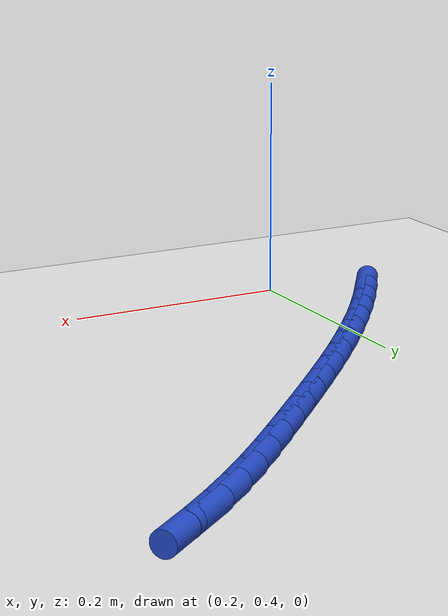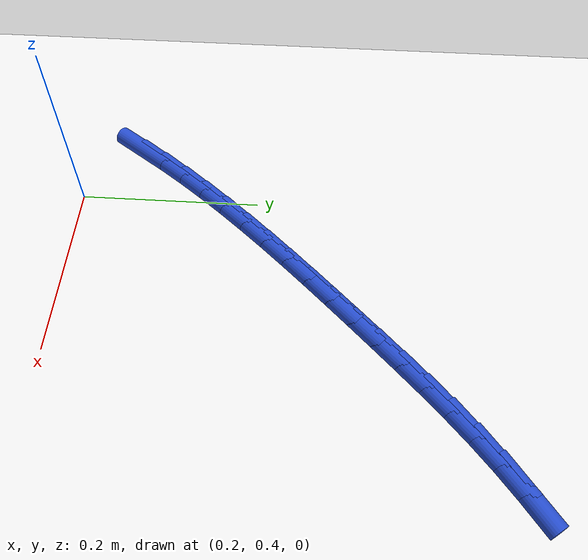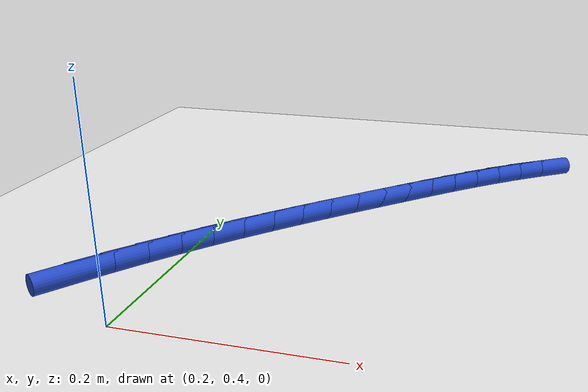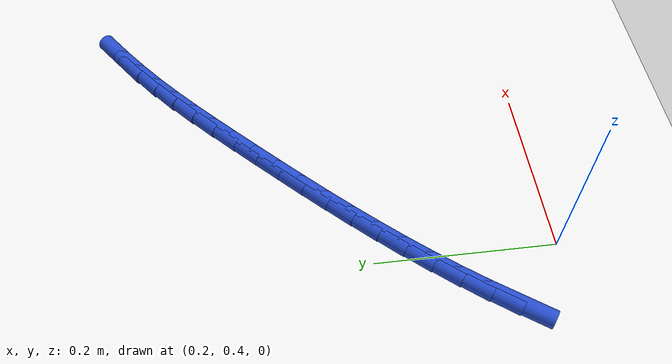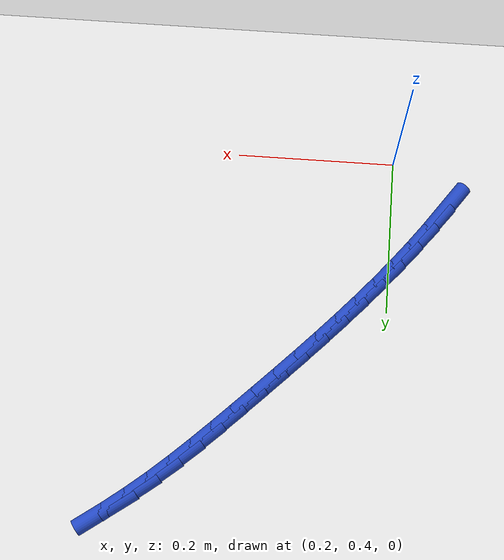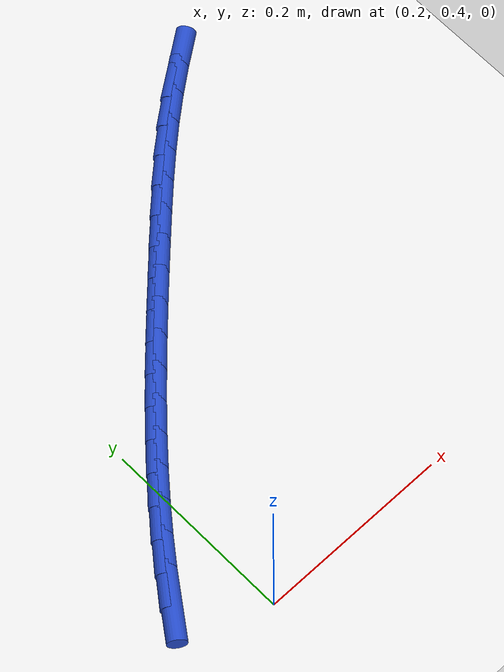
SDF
<sdf version="1.6">
 <world name="default">
  <model name="ground_plane">
   <static>1</static>
   <link name="link">
    <collision name="collision">
     <geometry><plane><normal>0 0 1</normal><size>100 100</size></plane></geometry>
     <surface><friction><ode><mu>100</mu><mu2>50</mu2></ode></friction></surface>
    </collision>
    <visual name="visual">
     <cast_shadows>0</cast_shadows>
     <geometry><plane><normal>0 0 1</normal><size>100 100</size></plane></geometry>
     <material>
      <script><uri>file://media/materials/scripts/gazebo.material</uri><name>Gazebo/WhiteGlow</name></script>
     </material>
    </visual>
   </link>
  </model>
  <model name="line">
   <link name="link_15">
    <pose>0.1322830042431913 0.46207215570587157 0.01 0 1.57 0.9538682935010617</pose>
    <collision name="collision">
     <geometry><cylinder><radius>0.01</radius><length>0.08</length></cylinder></geometry>
    </collision>
    <visual name="visual">
     <material>
      <script><name>Gazebo/Blue</name><uri>file://media/materials/scripts/gazebo.material</uri></script>
     </material>
     <geometry><cylinder><radius>0.01</radius><length>0.08</length></cylinder></geometry>
    </visual>
   </link>
   <link name="link_16">
    <pose>0.15122352893425275 0.48877597467786177 0.01 0 1.57 0.9235308130817051</pose>
    <collision name="collision">
     <geometry><cylinder><radius>0.01</radius><length>0.08</length></cylinder></geometry>
    </collision>
    <visual name="visual">
     <material>
      <script><name>Gazebo/Blue</name><uri>file://media/materials/scripts/gazebo.material</uri></script>
     </material>
     <geometry><cylinder><radius>0.01</radius><length>0.08</length></cylinder></geometry>
    </visual>
   </link>
   <link name="link_17">
    <pose>0.17106117995493442 0.5150197750576937 0.01 0 1.57 0.8963553222531527</pose>
    <collision name="collision">
     <geometry><cylinder><radius>0.01</radius><length>0.08</length></cylinder></geometry>
    </collision>
    <visual name="visual">
     <material>
      <script><name>Gazebo/Blue</name><uri>file://media/materials/scripts/gazebo.material</uri></script>
     </material>
     <geometry><cylinder><radius>0.01</radius><length>0.08</length></cylinder></geometry>
    </visual>
   </link>
   <link name="link_18">
    <pose>0.19169857719446703 0.5408323892602536 0.01 0 1.57 0.872248544255945</pose>
    <collision name="collision">
     <geometry><cylinder><radius>0.01</radius><length>0.08</length></cylinder></geometry>
    </collision>
    <visual name="visual">
     <material>
      <script><name>Gazebo/Blue</name><uri>file://media/materials/scripts/gazebo.material</uri></script>
     </material>
     <geometry><cylinder><radius>0.01</radius><length>0.08</length></cylinder></geometry>
    </visual>
   </link>
   <link name="link_19">
    <pose>0.21303834054208118 0.566242649700428 0.01 0 1.57 0.8511163273038134</pose>
    <collision name="collision">
     <geometry><cylinder><radius>0.01</radius><length>0.08</length></cylinder></geometry>
    </collision>
    <visual name="visual">
     <material>
      <script><name>Gazebo/Blue</name><uri>file://media/materials/scripts/gazebo.material</uri></script>
     </material>
     <geometry><cylinder><radius>0.01</radius><length>0.08</length></cylinder></geometry>
    </visual>
   </link>
   <link name="link_20">
    <pose>0.2349830898870074 0.5912793887931036 0.01 0 1.57 0.8328695917835235</pose>
    <collision name="collision">
     <geometry><cylinder><radius>0.01</radius><length>0.08</length></cylinder></geometry>
    </collision>
    <visual name="visual">
     <material>
      <script><name>Gazebo/Blue</name><uri>file://media/materials/scripts/gazebo.material</uri></script>
     </material>
     <geometry><cylinder><radius>0.01</radius><length>0.08</length></cylinder></geometry>
    </visual>
   </link>
   <link name="link_21">
    <pose>0.2574354451184765 0.6159714389531667 0.01 0 1.57 0.8174289467947158</pose>
    <collision name="collision">
     <geometry><cylinder><radius>0.01</radius><length>0.08</length></cylinder></geometry>
    </collision>
    <visual name="visual">
     <material>
      <script><name>Gazebo/Blue</name><uri>file://media/materials/scripts/gazebo.material</uri></script>
     </material>
     <geometry><cylinder><radius>0.01</radius><length>0.08</length></cylinder></geometry>
    </visual>
   </link>
   <link name="link_22">
    <pose>0.2802980261257191 0.640347632595504 0.01 0 1.57 0.8047282567486036</pose>
    <collision name="collision">
     <geometry><cylinder><radius>0.01</radius><length>0.08</length></cylinder></geometry>
    </collision>
    <visual name="visual">
     <material>
      <script><name>Gazebo/Blue</name><uri>file://media/materials/scripts/gazebo.material</uri></script>
     </material>
     <geometry><cylinder><radius>0.01</radius><length>0.08</length></cylinder></geometry>
    </visual>
   </link>
   <link name="link_23">
    <pose>0.30347345279796584 0.6644368021350018 0.01 0 1.57 0.7947174233926166</pose>
    <collision name="collision">
     <geometry><cylinder><radius>0.01</radius><length>0.08</length></cylinder></geometry>
    </collision>
    <visual name="visual">
     <material>
      <script><name>Gazebo/Blue</name><uri>file://media/materials/scripts/gazebo.material</uri></script>
     </material>
     <geometry><cylinder><radius>0.01</radius><length>0.08</length></cylinder></geometry>
    </visual>
   </link>
   <link name="link_24">
    <pose>0.32686434502444706 0.6882677799865464 0.01 0 1.57 0.787364616732721</pose>
    <collision name="collision">
     <geometry><cylinder><radius>0.01</radius><length>0.08</length></cylinder></geometry>
    </collision>
    <visual name="visual">
     <material>
      <script><name>Gazebo/Blue</name><uri>file://media/materials/scripts/gazebo.material</uri></script>
     </material>
     <geometry><cylinder><radius>0.01</radius><length>0.08</length></cylinder></geometry>
    </visual>
   </link>
   <link name="link_25">
    <pose>0.35037332269439414 0.7118693985650252 0.01 0 1.57 0.7826398959665777</pose>
    <collision name="collision">
     <geometry><cylinder><radius>0.01</radius><length>0.08</length></cylinder></geometry>
    </collision>
    <visual name="visual">
     <material>
      <script><name>Gazebo/Blue</name><uri>file://media/materials/scripts/gazebo.material</uri></script>
     </material>
     <geometry><cylinder><radius>0.01</radius><length>0.08</length></cylinder></geometry>
    </visual>
   </link>
   <link name="link_26">
    <pose>0.37390343516154334 0.7352700630702641 0.01 0 1.57 0.7776863904397144</pose>
    <collision name="collision">
     <geometry><cylinder><radius>0.01</radius><length>0.08</length></cylinder></geometry>
    </collision>
    <visual name="visual">
     <material>
      <script><name>Gazebo/Blue</name><uri>file://media/materials/scripts/gazebo.material</uri></script>
     </material>
     <geometry><cylinder><radius>0.01</radius><length>0.08</length></cylinder></geometry>
    </visual>
   </link>
   <link name="link_27">
    <pose>0.39742482399979673 0.7584314378972128 0.01 0 1.57 0.7664854347598168</pose>
    <collision name="collision">
     <geometry><cylinder><radius>0.01</radius><length>0.08</length></cylinder></geometry>
    </collision>
    <visual name="visual">
     <material>
      <script><name>Gazebo/Blue</name><uri>file://media/materials/scripts/gazebo.material</uri></script>
     </material>
     <geometry><cylinder><radius>0.01</radius><length>0.08</length></cylinder></geometry>
    </visual>
   </link>
   <link name="link_28">
    <pose>0.4210469853556649 0.7811765627788734 0.01 0 1.57 0.7481174663807753</pose>
    <collision name="collision">
     <geometry><cylinder><radius>0.01</radius><length>0.08</length></cylinder></geometry>
    </collision>
    <visual name="visual">
     <material>
      <script><name>Gazebo/Blue</name><uri>file://media/materials/scripts/gazebo.material</uri></script>
     </material>
     <geometry><cylinder><radius>0.01</radius><length>0.08</length></cylinder></geometry>
    </visual>
   </link>
   <link name="link_29">
    <pose>0.44489676637751224 0.8033112173273844 0.01 0 1.57 0.7223581899397177</pose>
    <collision name="collision">
     <geometry><cylinder><radius>0.01</radius><length>0.08</length></cylinder></geometry>
    </collision>
    <visual name="visual">
     <material>
      <script><name>Gazebo/Blue</name><uri>file://media/materials/scripts/gazebo.material</uri></script>
     </material>
     <geometry><cylinder><radius>0.01</radius><length>0.08</length></cylinder></geometry>
    </visual>
   </link>
   <link name="link_30">
    <pose>0.46910101421370337 0.8246411811548838 0.01 0 1.57 0.6894745957663395</pose>
    <collision name="collision">
     <geometry><cylinder><radius>0.01</radius><length>0.08</length></cylinder></geometry>
    </collision>
    <visual name="visual">
     <material>
      <script><name>Gazebo/Blue</name><uri>file://media/materials/scripts/gazebo.material</uri></script>
     </material>
     <geometry><cylinder><radius>0.01</radius><length>0.08</length></cylinder></geometry>
    </visual>
   </link>
   <link name="link_31">
    <pose>0.4937802443783938 0.8449880511693444 0.01 0 1.57 0.6554341247298708</pose>
    <collision name="collision">
     <geometry><cylinder><radius>0.01</radius><length>0.08</length></cylinder></geometry>
    </collision>
    <visual name="visual">
     <material>
      <script><name>Gazebo/Blue</name><uri>file://media/materials/scripts/gazebo.material</uri></script>
     </material>
     <geometry><cylinder><radius>0.01</radius><length>0.08</length></cylinder></geometry>
    </visual>
   </link>
   <link name="link_32">
    <pose>0.5189796094254182 0.8643616913515374 0.01 0 1.57 0.6245075182410981</pose>
    <collision name="collision">
     <geometry><cylinder><radius>0.01</radius><length>0.08</length></cylinder></geometry>
    </collision>
    <visual name="visual">
     <material>
      <script><name>Gazebo/Blue</name><uri>file://media/materials/scripts/gazebo.material</uri></script>
     </material>
     <geometry><cylinder><radius>0.01</radius><length>0.08</length></cylinder></geometry>
    </visual>
   </link>
  </model>
 </world>
</sdf>
